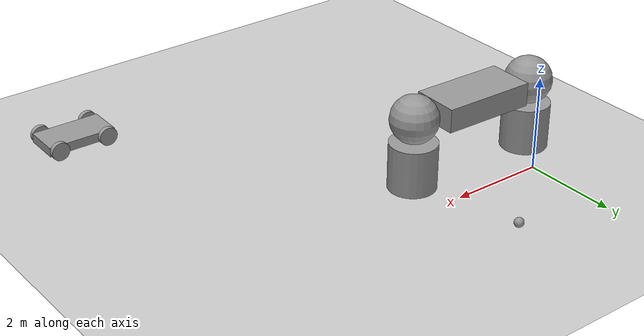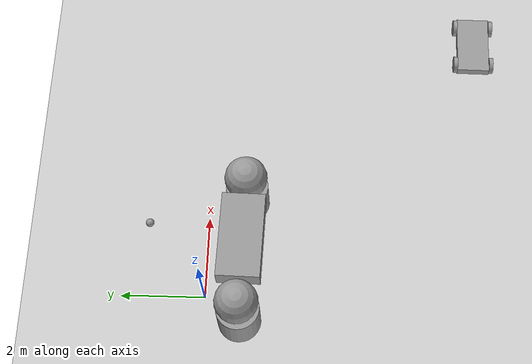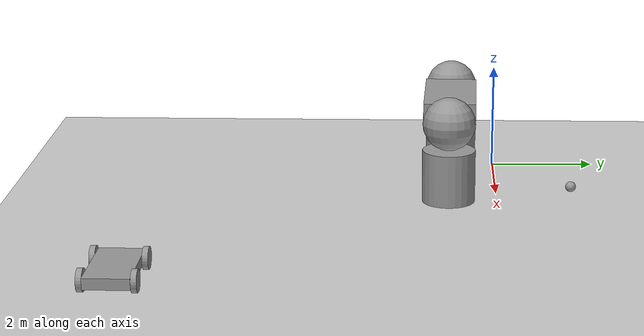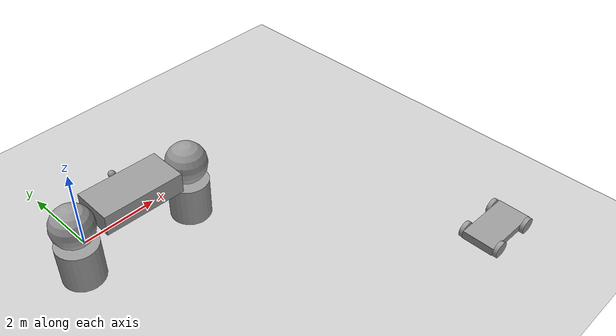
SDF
<sdf version="1.6">
 <world name="default">
  <model name="ground_plane">
   <static>1</static>
   <link name="link">
    <collision name="collision">
     <geometry><plane><normal>0 0 1</normal><size>100 100</size></plane></geometry>
     <surface>
      <contact><collide_bitmask>65535</collide_bitmask></contact>
      <friction><ode><mu>100</mu><mu2>50</mu2></ode></friction>
     </surface>
    </collision>
    <visual name="visual">
     <cast_shadows>0</cast_shadows>
     <geometry><plane><normal>0 0 1</normal><size>100 100</size></plane></geometry>
     <material>
      <script><uri>file://media/materials/scripts/gazebo.material</uri><name>Gazebo/Grey</name></script>
     </material>
    </visual>
   </link>
  </model>
  <model name="model1">
   <link name="link_0">
    <pose>-0 0 0.4 0 -0 0</pose>
    <inertial>
     <mass>1</mass>
     <inertia>
      <ixx>0.166667</ixx>
      <ixy>0</ixy>
      <ixz>0</ixz>
      <iyy>0.166667</iyy>
      <iyz>0</iyz>
      <izz>0.166667</izz>
     </inertia>
    </inertial>
    <visual name="visual">
     <geometry><box><size>1 2 0.5</size></box></geometry>
     <material>
      <lighting>1</lighting>
      <script><uri>file://media/materials/scripts/gazebo.material</uri><name>Gazebo/Grey</name></script>
      <shader type="pixel"><normal_map>__default__</normal_map></shader>
      <ambient>0.3 0.3 0.3 1</ambient>
      <diffuse>0.7 0.7 0.7 1</diffuse>
      <specular>0.01 0.01 0.01 1</specular>
      <emissive>0 0 0 1</emissive>
     </material>
    </visual>
    <collision name="collision">
     <geometry><box><size>1 2 0.5</size></box></geometry>
     <surface>
      <friction>
       <ode><mu>1</mu><mu2>1</mu2><fdir1>0 0 0</fdir1><slip1>0</slip1><slip2>0</slip2></ode>
       <torsional>
        <coefficient>1</coefficient>
        <patch_radius>0</patch_radius>
        <surface_radius>0</surface_radius>
        <use_patch_radius>1</use_patch_radius>
        <ode><slip>0</slip></ode>
       </torsional>
      </friction>
      <bounce><restitution_coefficient>0</restitution_coefficient><threshold>1e+06</threshold></bounce>
      <contact>
       <collide_without_contact>0</collide_without_contact>
       <collide_without_contact_bitmask>1</collide_without_contact_bitmask>
       <collide_bitmask>1</collide_bitmask>
       <ode>
        <soft_cfm>0</soft_cfm>
        <soft_erp>0.2</soft_erp>
        <kp>1e+13</kp>
        <kd>1</kd>
        <max_vel>0.01</max_vel>
        <min_depth>0</min_depth>
       </ode>
       <bullet>
        <split_impulse>1</split_impulse>
        <split_impulse_penetration_threshold>-0.01</split_impulse_penetration_threshold>
        <soft_cfm>0</soft_cfm>
        <soft_erp>0.2</soft_erp>
        <kp>1e+13</kp>
        <kd>1</kd>
       </bullet>
      </contact>
     </surface>
    </collision>
   </link>
   <link name="link_3">
    <pose>-0 1.5 0.4 0 -0 0</pose>
    <inertial>
     <mass>1</mass>
     <inertia><ixx>0.1</ixx><ixy>0</ixy><ixz>0</ixz><iyy>0.1</iyy><iyz>0</iyz><izz>0.1</izz></inertia>
    </inertial>
    <visual name="visual">
     <geometry><sphere><radius>0.5</radius></sphere></geometry>
     <material>
      <lighting>1</lighting>
      <script><uri>file://media/materials/scripts/gazebo.material</uri><name>Gazebo/Grey</name></script>
      <shader type="pixel"><normal_map>__default__</normal_map></shader>
      <ambient>0.3 0.3 0.3 1</ambient>
      <diffuse>0.7 0.7 0.7 1</diffuse>
      <specular>0.01 0.01 0.01 1</specular>
      <emissive>0 0 0 1</emissive>
     </material>
    </visual>
    <collision name="collision">
     <geometry><sphere><radius>0.5</radius></sphere></geometry>
     <surface>
      <friction>
       <ode><mu>1</mu><mu2>1</mu2><fdir1>0 0 0</fdir1><slip1>0</slip1><slip2>0</slip2></ode>
       <torsional>
        <coefficient>1</coefficient>
        <patch_radius>0</patch_radius>
        <surface_radius>0</surface_radius>
        <use_patch_radius>1</use_patch_radius>
        <ode><slip>0</slip></ode>
       </torsional>
      </friction>
      <bounce><restitution_coefficient>0</restitution_coefficient><threshold>1e+06</threshold></bounce>
      <contact>
       <collide_without_contact>0</collide_without_contact>
       <collide_without_contact_bitmask>1</collide_without_contact_bitmask>
       <collide_bitmask>1</collide_bitmask>
       <ode>
        <soft_cfm>0</soft_cfm>
        <soft_erp>0.2</soft_erp>
        <kp>1e+13</kp>
        <kd>1</kd>
        <max_vel>0.01</max_vel>
        <min_depth>0</min_depth>
       </ode>
       <bullet>
        <split_impulse>1</split_impulse>
        <split_impulse_penetration_threshold>-0.01</split_impulse_penetration_threshold>
        <soft_cfm>0</soft_cfm>
        <soft_erp>0.2</soft_erp>
        <kp>1e+13</kp>
        <kd>1</kd>
       </bullet>
      </contact>
     </surface>
    </collision>
   </link>
   <link name="link_4">
    <pose>-0 1.5 -0.6 0 -0 0</pose>
    <inertial>
     <mass>1</mass>
     <inertia><ixx>0.145833</ixx><ixy>0</ixy><ixz>0</ixz><iyy>0.145833</iyy><iyz>0</iyz><izz>0.125</izz></inertia>
    </inertial>
    <visual name="visual">
     <geometry><cylinder><radius>0.5</radius><length>1</length></cylinder></geometry>
     <material>
      <lighting>1</lighting>
      <script><uri>file://media/materials/scripts/gazebo.material</uri><name>Gazebo/Grey</name></script>
      <shader type="pixel"/>
      <ambient>0.3 0.3 0.3 1</ambient>
      <diffuse>0.7 0.7 0.7 1</diffuse>
      <specular>0.01 0.01 0.01 1</specular>
      <emissive>0 0 0 1</emissive>
     </material>
    </visual>
    <collision name="collision">
     <geometry><cylinder><radius>0.5</radius><length>1</length></cylinder></geometry>
     <surface>
      <friction>
       <ode><mu>1</mu><mu2>1</mu2><fdir1>0 0 0</fdir1><slip1>0</slip1><slip2>0</slip2></ode>
       <torsional>
        <coefficient>1</coefficient>
        <patch_radius>0</patch_radius>
        <surface_radius>0</surface_radius>
        <use_patch_radius>1</use_patch_radius>
        <ode><slip>0</slip></ode>
       </torsional>
      </friction>
      <bounce><restitution_coefficient>0</restitution_coefficient><threshold>1e+06</threshold></bounce>
      <contact>
       <collide_without_contact>0</collide_without_contact>
       <collide_without_contact_bitmask>1</collide_without_contact_bitmask>
       <collide_bitmask>1</collide_bitmask>
       <ode>
        <soft_cfm>0</soft_cfm>
        <soft_erp>0.2</soft_erp>
        <kp>1e+13</kp>
        <kd>1</kd>
        <max_vel>0.01</max_vel>
        <min_depth>0</min_depth>
       </ode>
       <bullet>
        <split_impulse>1</split_impulse>
        <split_impulse_penetration_threshold>-0.01</split_impulse_penetration_threshold>
        <soft_cfm>0</soft_cfm>
        <soft_erp>0.2</soft_erp>
        <kp>1e+13</kp>
        <kd>1</kd>
       </bullet>
      </contact>
     </surface>
    </collision>
   </link>
   <link name="link_5">
    <pose>-0 -1.5 0.4 0 -0 0</pose>
    <inertial>
     <mass>1</mass>
     <inertia><ixx>0.1</ixx><ixy>0</ixy><ixz>0</ixz><iyy>0.1</iyy><iyz>0</iyz><izz>0.1</izz></inertia>
    </inertial>
    <visual name="visual">
     <geometry><sphere><radius>0.5</radius></sphere></geometry>
     <material>
      <lighting>1</lighting>
      <script><uri>file://media/materials/scripts/gazebo.material</uri><name>Gazebo/Grey</name></script>
      <shader type="pixel"><normal_map>__default__</normal_map></shader>
      <ambient>0.3 0.3 0.3 1</ambient>
      <diffuse>0.7 0.7 0.7 1</diffuse>
      <specular>0.01 0.01 0.01 1</specular>
      <emissive>0 0 0 1</emissive>
     </material>
    </visual>
    <collision name="collision">
     <geometry><sphere><radius>0.5</radius></sphere></geometry>
     <surface>
      <friction>
       <ode><mu>1</mu><mu2>1</mu2><fdir1>0 0 0</fdir1><slip1>0</slip1><slip2>0</slip2></ode>
       <torsional>
        <coefficient>1</coefficient>
        <patch_radius>0</patch_radius>
        <surface_radius>0</surface_radius>
        <use_patch_radius>1</use_patch_radius>
        <ode><slip>0</slip></ode>
       </torsional>
      </friction>
      <bounce><restitution_coefficient>0</restitution_coefficient><threshold>1e+06</threshold></bounce>
      <contact>
       <collide_without_contact>0</collide_without_contact>
       <collide_without_contact_bitmask>1</collide_without_contact_bitmask>
       <collide_bitmask>1</collide_bitmask>
       <ode>
        <soft_cfm>0</soft_cfm>
        <soft_erp>0.2</soft_erp>
        <kp>1e+13</kp>
        <kd>1</kd>
        <max_vel>0.01</max_vel>
        <min_depth>0</min_depth>
       </ode>
       <bullet>
        <split_impulse>1</split_impulse>
        <split_impulse_penetration_threshold>-0.01</split_impulse_penetration_threshold>
        <soft_cfm>0</soft_cfm>
        <soft_erp>0.2</soft_erp>
        <kp>1e+13</kp>
        <kd>1</kd>
       </bullet>
      </contact>
     </surface>
    </collision>
   </link>
   <link name="link_6">
    <pose>-0 -1.5 -0.6 0 -0 0</pose>
    <inertial>
     <mass>1</mass>
     <inertia><ixx>0.145833</ixx><ixy>0</ixy><ixz>0</ixz><iyy>0.145833</iyy><iyz>0</iyz><izz>0.125</izz></inertia>
    </inertial>
    <visual name="visual">
     <geometry><cylinder><radius>0.5</radius><length>1</length></cylinder></geometry>
     <material>
      <lighting>1</lighting>
      <script><uri>file://media/materials/scripts/gazebo.material</uri><name>Gazebo/Grey</name></script>
      <shader type="pixel"/>
      <ambient>0.3 0.3 0.3 1</ambient>
      <diffuse>0.7 0.7 0.7 1</diffuse>
      <specular>0.01 0.01 0.01 1</specular>
      <emissive>0 0 0 1</emissive>
     </material>
    </visual>
    <collision name="collision">
     <geometry><cylinder><radius>0.5</radius><length>1</length></cylinder></geometry>
     <surface>
      <friction>
       <ode><mu>1</mu><mu2>1</mu2><fdir1>0 0 0</fdir1><slip1>0</slip1><slip2>0</slip2></ode>
       <torsional>
        <coefficient>1</coefficient>
        <patch_radius>0</patch_radius>
        <surface_radius>0</surface_radius>
        <use_patch_radius>1</use_patch_radius>
        <ode><slip>0</slip></ode>
       </torsional>
      </friction>
      <bounce><restitution_coefficient>0</restitution_coefficient><threshold>1e+06</threshold></bounce>
      <contact>
       <collide_without_contact>0</collide_without_contact>
       <collide_without_contact_bitmask>1</collide_without_contact_bitmask>
       <collide_bitmask>1</collide_bitmask>
       <ode>
        <soft_cfm>0</soft_cfm>
        <soft_erp>0.2</soft_erp>
        <kp>1e+13</kp>
        <kd>1</kd>
        <max_vel>0.01</max_vel>
        <min_depth>0</min_depth>
       </ode>
       <bullet>
        <split_impulse>1</split_impulse>
        <split_impulse_penetration_threshold>-0.01</split_impulse_penetration_threshold>
        <soft_cfm>0</soft_cfm>
        <soft_erp>0.2</soft_erp>
        <kp>1e+13</kp>
        <kd>1</kd>
       </bullet>
      </contact>
     </surface>
    </collision>
   </link>
   <joint name="link_0_JOINT_0" type="revolute">
    <parent>link_0</parent>
    <child>link_3</child>
    <axis>
     <xyz>0 0 1</xyz>
     <use_parent_model_frame>0</use_parent_model_frame>
     <limit>
      <lower>-1.79769e+308</lower>
      <upper>1.79769e+308</upper>
      <effort>-1</effort>
      <velocity>-1</velocity>
     </limit>
     <dynamics>
      <spring_reference>0</spring_reference>
      <spring_stiffness>0</spring_stiffness>
      <damping>0</damping>
     </dynamics>
    </axis>
    <physics>
     <ode><limit><cfm>0</cfm><erp>0.2</erp></limit><suspension><cfm>0</cfm><erp>0.2</erp></suspension></ode>
    </physics>
   </joint>
   <joint name="link_0_JOINT_1" type="revolute">
    <parent>link_0</parent>
    <child>link_5</child>
    <axis>
     <xyz>1 0 0</xyz>
     <use_parent_model_frame>0</use_parent_model_frame>
     <limit>
      <lower>-1.79769e+308</lower>
      <upper>1.79769e+308</upper>
      <effort>-1</effort>
      <velocity>-1</velocity>
     </limit>
     <dynamics>
      <spring_reference>0</spring_reference>
      <spring_stiffness>0</spring_stiffness>
      <damping>0</damping>
     </dynamics>
    </axis>
    <physics>
     <ode><limit><cfm>0</cfm><erp>0.2</erp></limit><suspension><cfm>0</cfm><erp>0.2</erp></suspension></ode>
    </physics>
   </joint>
   <joint name="link_3_JOINT_3" type="revolute">
    <parent>link_3</parent>
    <child>link_4</child>
    <axis>
     <xyz>0 0 1</xyz>
     <use_parent_model_frame>0</use_parent_model_frame>
     <limit>
      <lower>-1.79769e+308</lower>
      <upper>1.79769e+308</upper>
      <effort>-1</effort>
      <velocity>-1</velocity>
     </limit>
     <dynamics>
      <spring_reference>0</spring_reference>
      <spring_stiffness>0</spring_stiffness>
      <damping>0</damping>
     </dynamics>
    </axis>
    <physics>
     <ode><limit><cfm>0</cfm><erp>0.2</erp></limit><suspension><cfm>0</cfm><erp>0.2</erp></suspension></ode>
    </physics>
   </joint>
   <joint name="link_5_JOINT_2" type="revolute">
    <parent>link_5</parent>
    <child>link_6</child>
    <axis>
     <xyz>0 0 1</xyz>
     <use_parent_model_frame>0</use_parent_model_frame>
     <limit>
      <lower>-1.79769e+308</lower>
      <upper>1.79769e+308</upper>
      <effort>-1</effort>
      <velocity>-1</velocity>
     </limit>
     <dynamics>
      <spring_reference>0</spring_reference>
      <spring_stiffness>0</spring_stiffness>
      <damping>0</damping>
     </dynamics>
    </axis>
    <physics>
     <ode><limit><cfm>0</cfm><erp>0.2</erp></limit><suspension><cfm>0</cfm><erp>0.2</erp></suspension></ode>
    </physics>
   </joint>
   <static>0</static>
   <pose>0.944989 -0.877259 1.10013 -6.6e-05 3e-06 -1.59859</pose>
  </model>
  <model name="model_wheel">
   <link name="link_0">
    <pose>-2e-06 1e-06 0 0 -0 0</pose>
    <inertial>
     <mass>1</mass>
     <inertia>
      <ixx>0.166667</ixx>
      <ixy>0</ixy>
      <ixz>0</ixz>
      <iyy>0.166667</iyy>
      <iyz>0</iyz>
      <izz>0.166667</izz>
     </inertia>
    </inertial>
    <visual name="visual">
     <geometry><box><size>1.5 0.8 0.2</size></box></geometry>
     <material>
      <lighting>1</lighting>
      <script><uri>file://media/materials/scripts/gazebo.material</uri><name>Gazebo/Grey</name></script>
      <shader type="pixel"><normal_map>__default__</normal_map></shader>
      <ambient>0.3 0.3 0.3 1</ambient>
      <diffuse>0.7 0.7 0.7 1</diffuse>
      <specular>0.01 0.01 0.01 1</specular>
      <emissive>0 0 0 1</emissive>
     </material>
    </visual>
    <collision name="collision">
     <geometry><box><size>1.5 0.8 0.2</size></box></geometry>
     <surface>
      <friction>
       <ode><mu>1</mu><mu2>1</mu2><fdir1>0 0 0</fdir1><slip1>0</slip1><slip2>0</slip2></ode>
       <torsional>
        <coefficient>1</coefficient>
        <patch_radius>0</patch_radius>
        <surface_radius>0</surface_radius>
        <use_patch_radius>1</use_patch_radius>
        <ode><slip>0</slip></ode>
       </torsional>
      </friction>
      <bounce><restitution_coefficient>0</restitution_coefficient><threshold>1e+06</threshold></bounce>
      <contact>
       <collide_without_contact>0</collide_without_contact>
       <collide_without_contact_bitmask>1</collide_without_contact_bitmask>
       <collide_bitmask>1</collide_bitmask>
       <ode>
        <soft_cfm>0</soft_cfm>
        <soft_erp>0.2</soft_erp>
        <kp>1e+13</kp>
        <kd>1</kd>
        <max_vel>0.01</max_vel>
        <min_depth>0</min_depth>
       </ode>
       <bullet>
        <split_impulse>1</split_impulse>
        <split_impulse_penetration_threshold>-0.01</split_impulse_penetration_threshold>
        <soft_cfm>0</soft_cfm>
        <soft_erp>0.2</soft_erp>
        <kp>1e+13</kp>
        <kd>1</kd>
       </bullet>
      </contact>
     </surface>
    </collision>
   </link>
   <link name="link_1">
    <pose>-0.550002 -0.450018 0 1.5707 -0 0</pose>
    <inertial>
     <mass>1</mass>
     <inertia><ixx>0.145833</ixx><ixy>0</ixy><ixz>0</ixz><iyy>0.145833</iyy><iyz>0</iyz><izz>0.125</izz></inertia>
    </inertial>
    <visual name="visual">
     <geometry><cylinder><radius>0.2</radius><length>0.1</length></cylinder></geometry>
     <material>
      <lighting>1</lighting>
      <script><uri>file://media/materials/scripts/gazebo.material</uri><name>Gazebo/Grey</name></script>
      <shader type="pixel"><normal_map>__default__</normal_map></shader>
      <ambient>0.3 0.3 0.3 1</ambient>
      <diffuse>0.7 0.7 0.7 1</diffuse>
      <specular>0.01 0.01 0.01 1</specular>
      <emissive>0 0 0 1</emissive>
     </material>
    </visual>
    <collision name="collision">
     <geometry><cylinder><radius>0.2</radius><length>0.1</length></cylinder></geometry>
     <surface>
      <friction>
       <ode><mu>1</mu><mu2>1</mu2><fdir1>0 0 0</fdir1><slip1>0</slip1><slip2>0</slip2></ode>
       <torsional>
        <coefficient>1</coefficient>
        <patch_radius>0</patch_radius>
        <surface_radius>0</surface_radius>
        <use_patch_radius>1</use_patch_radius>
        <ode><slip>0</slip></ode>
       </torsional>
      </friction>
      <bounce><restitution_coefficient>0</restitution_coefficient><threshold>1e+06</threshold></bounce>
      <contact>
       <collide_without_contact>0</collide_without_contact>
       <collide_without_contact_bitmask>1</collide_without_contact_bitmask>
       <collide_bitmask>1</collide_bitmask>
       <ode>
        <soft_cfm>0</soft_cfm>
        <soft_erp>0.2</soft_erp>
        <kp>1e+13</kp>
        <kd>1</kd>
        <max_vel>0.01</max_vel>
        <min_depth>0</min_depth>
       </ode>
       <bullet>
        <split_impulse>1</split_impulse>
        <split_impulse_penetration_threshold>-0.01</split_impulse_penetration_threshold>
        <soft_cfm>0</soft_cfm>
        <soft_erp>0.2</soft_erp>
        <kp>1e+13</kp>
        <kd>1</kd>
       </bullet>
      </contact>
     </surface>
    </collision>
   </link>
   <link name="link_1_clone">
    <pose>0.550002 -0.450021 0 1.5707 -0 0</pose>
    <inertial>
     <mass>1</mass>
     <inertia><ixx>0.145833</ixx><ixy>0</ixy><ixz>0</ixz><iyy>0.145833</iyy><iyz>0</iyz><izz>0.125</izz></inertia>
    </inertial>
    <visual name="visual">
     <geometry><cylinder><radius>0.2</radius><length>0.1</length></cylinder></geometry>
     <material>
      <lighting>1</lighting>
      <script><uri>file://media/materials/scripts/gazebo.material</uri><name>Gazebo/Grey</name></script>
      <shader type="pixel"><normal_map>__default__</normal_map></shader>
      <ambient>0.3 0.3 0.3 1</ambient>
      <diffuse>0.7 0.7 0.7 1</diffuse>
      <specular>0.01 0.01 0.01 1</specular>
      <emissive>0 0 0 1</emissive>
     </material>
    </visual>
    <collision name="collision">
     <geometry><cylinder><radius>0.2</radius><length>0.1</length></cylinder></geometry>
     <surface>
      <friction>
       <ode><mu>1</mu><mu2>1</mu2><fdir1>0 0 0</fdir1><slip1>0</slip1><slip2>0</slip2></ode>
       <torsional>
        <coefficient>1</coefficient>
        <patch_radius>0</patch_radius>
        <surface_radius>0</surface_radius>
        <use_patch_radius>1</use_patch_radius>
        <ode><slip>0</slip></ode>
       </torsional>
      </friction>
      <bounce><restitution_coefficient>0</restitution_coefficient><threshold>1e+06</threshold></bounce>
      <contact>
       <collide_without_contact>0</collide_without_contact>
       <collide_without_contact_bitmask>1</collide_without_contact_bitmask>
       <collide_bitmask>1</collide_bitmask>
       <ode>
        <soft_cfm>0</soft_cfm>
        <soft_erp>0.2</soft_erp>
        <kp>1e+13</kp>
        <kd>1</kd>
        <max_vel>0.01</max_vel>
        <min_depth>0</min_depth>
       </ode>
       <bullet>
        <split_impulse>1</split_impulse>
        <split_impulse_penetration_threshold>-0.01</split_impulse_penetration_threshold>
        <soft_cfm>0</soft_cfm>
        <soft_erp>0.2</soft_erp>
        <kp>1e+13</kp>
        <kd>1</kd>
       </bullet>
      </contact>
     </surface>
    </collision>
   </link>
   <link name="link_1_clone_0">
    <pose>-0.550002 0.45002 0 1.5707 -0 0</pose>
    <inertial>
     <mass>1</mass>
     <inertia><ixx>0.145833</ixx><ixy>0</ixy><ixz>0</ixz><iyy>0.145833</iyy><iyz>0</iyz><izz>0.125</izz></inertia>
    </inertial>
    <visual name="visual">
     <geometry><cylinder><radius>0.2</radius><length>0.1</length></cylinder></geometry>
     <material>
      <lighting>1</lighting>
      <script><uri>file://media/materials/scripts/gazebo.material</uri><name>Gazebo/Grey</name></script>
      <shader type="pixel"><normal_map>__default__</normal_map></shader>
      <ambient>0.3 0.3 0.3 1</ambient>
      <diffuse>0.7 0.7 0.7 1</diffuse>
      <specular>0.01 0.01 0.01 1</specular>
      <emissive>0 0 0 1</emissive>
     </material>
    </visual>
    <collision name="collision">
     <geometry><cylinder><radius>0.2</radius><length>0.1</length></cylinder></geometry>
     <surface>
      <friction>
       <ode><mu>1</mu><mu2>1</mu2><fdir1>0 0 0</fdir1><slip1>0</slip1><slip2>0</slip2></ode>
       <torsional>
        <coefficient>1</coefficient>
        <patch_radius>0</patch_radius>
        <surface_radius>0</surface_radius>
        <use_patch_radius>1</use_patch_radius>
        <ode><slip>0</slip></ode>
       </torsional>
      </friction>
      <bounce><restitution_coefficient>0</restitution_coefficient><threshold>1e+06</threshold></bounce>
      <contact>
       <collide_without_contact>0</collide_without_contact>
       <collide_without_contact_bitmask>1</collide_without_contact_bitmask>
       <collide_bitmask>1</collide_bitmask>
       <ode>
        <soft_cfm>0</soft_cfm>
        <soft_erp>0.2</soft_erp>
        <kp>1e+13</kp>
        <kd>1</kd>
        <max_vel>0.01</max_vel>
        <min_depth>0</min_depth>
       </ode>
       <bullet>
        <split_impulse>1</split_impulse>
        <split_impulse_penetration_threshold>-0.01</split_impulse_penetration_threshold>
        <soft_cfm>0</soft_cfm>
        <soft_erp>0.2</soft_erp>
        <kp>1e+13</kp>
        <kd>1</kd>
       </bullet>
      </contact>
     </surface>
    </collision>
   </link>
   <link name="link_1_clone_1">
    <pose>0.549998 0.45002 0 1.5707 -0 0</pose>
    <inertial>
     <mass>1</mass>
     <inertia><ixx>0.145833</ixx><ixy>0</ixy><ixz>0</ixz><iyy>0.145833</iyy><iyz>0</iyz><izz>0.125</izz></inertia>
    </inertial>
    <visual name="visual">
     <geometry><cylinder><radius>0.2</radius><length>0.1</length></cylinder></geometry>
     <material>
      <lighting>1</lighting>
      <script><uri>file://media/materials/scripts/gazebo.material</uri><name>Gazebo/Grey</name></script>
      <shader type="pixel"><normal_map>__default__</normal_map></shader>
      <ambient>0.3 0.3 0.3 1</ambient>
      <diffuse>0.7 0.7 0.7 1</diffuse>
      <specular>0.01 0.01 0.01 1</specular>
      <emissive>0 0 0 1</emissive>
     </material>
    </visual>
    <collision name="collision">
     <geometry><cylinder><radius>0.2</radius><length>0.1</length></cylinder></geometry>
     <surface>
      <friction>
       <ode><mu>1</mu><mu2>1</mu2><fdir1>0 0 0</fdir1><slip1>0</slip1><slip2>0</slip2></ode>
       <torsional>
        <coefficient>1</coefficient>
        <patch_radius>0</patch_radius>
        <surface_radius>0</surface_radius>
        <use_patch_radius>1</use_patch_radius>
        <ode><slip>0</slip></ode>
       </torsional>
      </friction>
      <bounce><restitution_coefficient>0</restitution_coefficient><threshold>1e+06</threshold></bounce>
      <contact>
       <collide_without_contact>0</collide_without_contact>
       <collide_without_contact_bitmask>1</collide_without_contact_bitmask>
       <collide_bitmask>1</collide_bitmask>
       <ode>
        <soft_cfm>0</soft_cfm>
        <soft_erp>0.2</soft_erp>
        <kp>1e+13</kp>
        <kd>1</kd>
        <max_vel>0.01</max_vel>
        <min_depth>0</min_depth>
       </ode>
       <bullet>
        <split_impulse>1</split_impulse>
        <split_impulse_penetration_threshold>-0.01</split_impulse_penetration_threshold>
        <soft_cfm>0</soft_cfm>
        <soft_erp>0.2</soft_erp>
        <kp>1e+13</kp>
        <kd>1</kd>
       </bullet>
      </contact>
     </surface>
    </collision>
   </link>
   <joint name="link_0_JOINT_0" type="revolute">
    <parent>link_0</parent>
    <child>link_1_clone_1</child>
    <axis>
     <xyz>0 1 0</xyz>
     <use_parent_model_frame>0</use_parent_model_frame>
     <limit>
      <lower>-1.79769e+308</lower>
      <upper>1.79769e+308</upper>
      <effort>-1</effort>
      <velocity>-1</velocity>
     </limit>
     <dynamics>
      <spring_reference>0</spring_reference>
      <spring_stiffness>0</spring_stiffness>
      <damping>0</damping>
      <friction>0</friction>
     </dynamics>
    </axis>
    <physics>
     <ode><limit><cfm>0</cfm><erp>0.2</erp></limit><suspension><cfm>0</cfm><erp>0.2</erp></suspension></ode>
    </physics>
   </joint>
   <joint name="link_0_JOINT_1" type="revolute">
    <parent>link_0</parent>
    <child>link_1_clone</child>
    <axis>
     <xyz>0 1 0</xyz>
     <use_parent_model_frame>0</use_parent_model_frame>
     <limit>
      <lower>-1.79769e+308</lower>
      <upper>1.79769e+308</upper>
      <effort>-1</effort>
      <velocity>-1</velocity>
     </limit>
     <dynamics>
      <spring_reference>0</spring_reference>
      <spring_stiffness>0</spring_stiffness>
      <damping>0</damping>
      <friction>0</friction>
     </dynamics>
    </axis>
    <physics>
     <ode><limit><cfm>0</cfm><erp>0.2</erp></limit><suspension><cfm>0</cfm><erp>0.2</erp></suspension></ode>
    </physics>
   </joint>
   <joint name="link_0_JOINT_2" type="revolute">
    <parent>link_0</parent>
    <child>link_1</child>
    <axis>
     <xyz>0 1 0</xyz>
     <use_parent_model_frame>0</use_parent_model_frame>
     <limit>
      <lower>-1.79769e+308</lower>
      <upper>1.79769e+308</upper>
      <effort>-1</effort>
      <velocity>-1</velocity>
     </limit>
     <dynamics>
      <spring_reference>0</spring_reference>
      <spring_stiffness>0</spring_stiffness>
      <damping>0</damping>
      <friction>0</friction>
     </dynamics>
    </axis>
    <physics>
     <ode><limit><cfm>0</cfm><erp>0.2</erp></limit><suspension><cfm>0</cfm><erp>0.2</erp></suspension></ode>
    </physics>
   </joint>
   <joint name="link_0_JOINT_3" type="revolute">
    <parent>link_0</parent>
    <child>link_1_clone_0</child>
    <axis>
     <xyz>0 1 0</xyz>
     <use_parent_model_frame>0</use_parent_model_frame>
     <limit>
      <lower>-1.79769e+308</lower>
      <upper>1.79769e+308</upper>
      <effort>-1</effort>
      <velocity>-1</velocity>
     </limit>
     <dynamics>
      <spring_reference>0</spring_reference>
      <spring_stiffness>0</spring_stiffness>
      <damping>0</damping>
      <friction>0</friction>
     </dynamics>
    </axis>
    <physics>
     <ode><limit><cfm>0</cfm><erp>0.2</erp></limit><suspension><cfm>0</cfm><erp>0.2</erp></suspension></ode>
    </physics>
   </joint>
   <static>0</static>
   <pose>6.90524 -6.52379 0.200003 -2e-06 -1e-06 -0.017469</pose>
  </model>
  <model name="my_ball">
   <link name="link">
    <pose>0.52744 -2.04162 0 0 -0 0</pose>
    <inertial>
     <mass>1</mass>
     <inertia><ixx>0.1</ixx><ixy>0</ixy><ixz>0</ixz><iyy>0.1</iyy><iyz>0</iyz><izz>0.1</izz></inertia>
    </inertial>
    <visual name="visual">
     <geometry><sphere><radius>0.1</radius></sphere></geometry>
     <material>
      <script><name>Gazebo/Grey</name><uri>file://media/materials/scripts/gazebo.material</uri></script>
      <shader type="pixel"><normal_map>__default__</normal_map></shader>
      <ambient>1 1 1 1</ambient>
      <diffuse>1 1 1 1</diffuse>
      <specular>1 1 1 1</specular>
      <emissive>1 1 1 1</emissive>
     </material>
    </visual>
    <collision name="collision">
     <geometry><sphere><radius>0.1</radius></sphere></geometry>
     <surface>
      <friction>
       <ode><mu>1</mu><mu2>1</mu2><fdir1>0 0 0</fdir1><slip1>0</slip1><slip2>0</slip2></ode>
       <torsional>
        <coefficient>1</coefficient>
        <patch_radius>0</patch_radius>
        <surface_radius>0</surface_radius>
        <use_patch_radius>1</use_patch_radius>
        <ode><slip>0</slip></ode>
       </torsional>
      </friction>
      <bounce><restitution_coefficient>0</restitution_coefficient><threshold>1e+06</threshold></bounce>
      <contact>
       <collide_without_contact>0</collide_without_contact>
       <collide_without_contact_bitmask>1</collide_without_contact_bitmask>
       <collide_bitmask>1</collide_bitmask>
       <ode>
        <soft_cfm>0</soft_cfm>
        <soft_erp>0.2</soft_erp>
        <kp>1e+13</kp>
        <kd>1</kd>
        <max_vel>0.01</max_vel>
        <min_depth>0</min_depth>
       </ode>
       <bullet>
        <split_impulse>1</split_impulse>
        <split_impulse_penetration_threshold>-0.01</split_impulse_penetration_threshold>
        <soft_cfm>0</soft_cfm>
        <soft_erp>0.2</soft_erp>
        <kp>1e+13</kp>
        <kd>1</kd>
       </bullet>
      </contact>
     </surface>
    </collision>
   </link>
   <static>0</static>
   <pose>1.306 3.48507 0.1 0 -0 0</pose>
  </model>
 </world>
</sdf>
